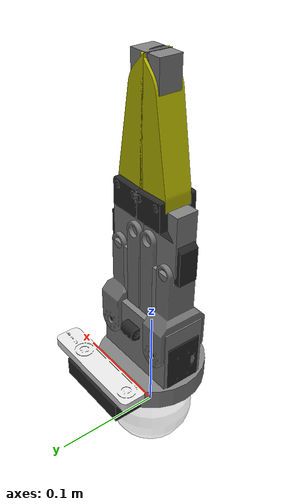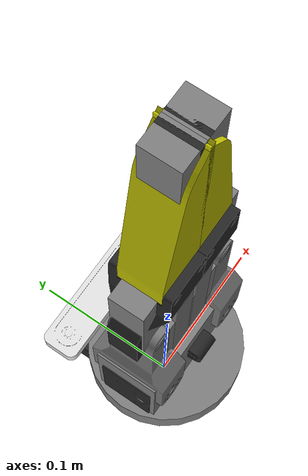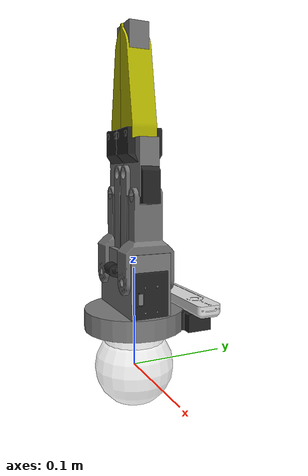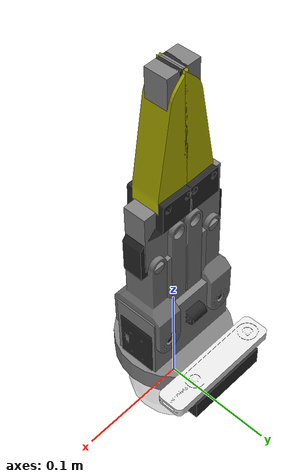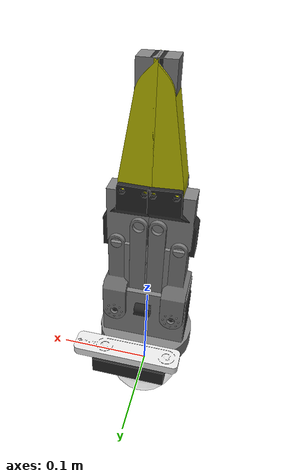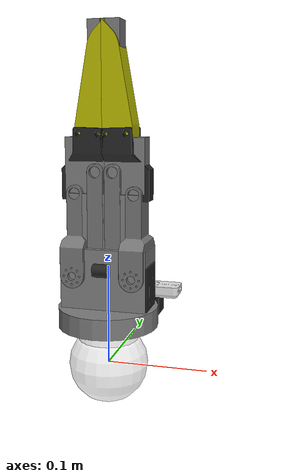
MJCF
<mujoco model="legato_gripper">

  <actuator>
      <motor ctrllimited="true" ctrlrange="-20 20" joint="joint_left_driver" gear="1" name="torque_left_drive"/>
      <motor ctrllimited="true" ctrlrange="-20 20" joint="joint_right_driver" gear="1" name="torque_right_drive"/>
  </actuator>

  <asset>
    <material name="metal" rgba="0.58 0.58 0.58 1"/>
    <material name="black" rgba="0.149 0.149 0.149 1"/>
    <material name="gray" rgba="0.4627 0.4627 0.4627 1"/>
    <material name="white" rgba="0.9 0.9 0.9 1"/>
    <material name="yellow" rgba="0.75 0.75 0 1"/>
    <material name="blue" rgba="0 0 1 1"/>
    <material name="tool_mount" rgba="0.9 0.9 0.9 0.5"/>
    <material name="silicone" rgba="0.1882 0.1882 0.1882 1"/>

    <mesh name="mesh_base" file="meshes/base.stl" scale="0.001 0.001 0.001"/>
    <mesh name="mesh_camera" file="meshes/t265.stl" scale="0.001 0.001 0.001"/>
    <mesh name="mesh_link_upper" file="meshes/link_upper.stl" scale="0.001 0.001 0.001"/>
    <mesh name="mesh_link_lower" file="meshes/link_lower.stl" scale="0.001 0.001 0.001"/>
    <mesh name="mesh_link_finger" file="meshes/link_finger.stl" scale="0.001 0.001 0.001"/>
    <mesh name="mesh_finger_tip" file="meshes/finger_tip.stl" scale="0.001 0.001 0.001"/>
  </asset>

  <worldbody>
    <body name="base" pos="0 0 0.04">
      <geom name="geom_mount_1_viz"
        type="cylinder" size="0.03 0.02"
        pos="0 0 -0.02" quat="0.7071068 0 0 0.7071068"
        group="1" contype="0" conaffinity="0"
        material="tool_mount"
        />
      <geom name="geom_mount_2_viz"
        type="sphere" size="0.04"
        pos="0 0 -0.04"
        group="1" contype="0" conaffinity="0"
        material="tool_mount"
        />
      <geom name="geom_base_viz"
        type="mesh" mesh="mesh_base"
        quat="0.7071068 0 0 0.7071068"
        group="1" contype="0" conaffinity="0"
        material="black"
        />
      <geom name="geom_camera_viz"
        type="mesh" mesh="mesh_camera"
        pos="0.0091 0.0525 0.018" quat="0 0.707 0 0.707"
        group="1" contype="0" conaffinity="0"
        material="white"
        />
      <geom name="geom_base_1_col"
        type="cylinder" pos="0 0 0.01" size="0.05 0.01"
        />
      <geom name="geom_base_2_col"
        type="box" pos="0 0 0.045" size="0.043 0.02 0.035"
        />
        <!-- type="box" pos="0 0 0.038" size="0.043 0.02 0.028" -->
      <inertial
        mass="163.98e-03" fullinertia="147.87942e-06 178.14255e-06 224.8969e-06 -12.24474e-06 -3.40457e-06 42.8782e-06"
        pos="0.00187 0.0124 0.033"
        />
      <body name="camera_point" pos="0 0.0525 0.02" quat="1 0 0 0">
          <camera mode="fixed" name="stereo_l_right_hand" pos="0.032 0.0 0.0" quat="0 1 0 0" fovy="120"/>
          <camera mode="fixed" name="stereo_r_right_hand" pos="-0.032 0.0 0.0" quat="0 1 0 0" fovy="120"/>
      </body>

    <body name="left_link_lower" pos="0.02975  0 0.05325">
      <joint name="joint_left_driver"
        axis="0 1 0"
        limited="true" range="0 1.5708"
        frictionloss="0.4" damping="0.2"
        />
      <geom name="geom_left_link_lower_viz"
        type="mesh" mesh="mesh_link_lower"
        quat="0.5 0.5 0.5 0.5"
        group="1" contype="0" conaffinity="0"
        material="gray"
        />
      <geom name="geom_left_link_lower_col"
        type="box" pos="-0.015 0 0.045" size="0.022 0.014 0.035"
        />
      <inertial
        mass="9.37e-03" diaginertia="5.82620e-9 4.47730e-9 2.00989e-9"
        pos="0 0 0.03796"
        />

    <body name="left_link_finger" pos="0 0 0.08">
      <joint name="joint_left_finger"
        limited="true" range="-1.5708 0"
        axis="0 1 0"
        />
      <geom name="geom_left_link_finger_viz"
        type="mesh" mesh="mesh_link_finger"
        quat="0.707 0 0 -0.707"
        group="1" contype="0" conaffinity="0"
        material="black"
        />
      <geom name="geom_left_finger_tip_viz"
        type="mesh" mesh="mesh_finger_tip"
        pos="-0.03131 0 0.0534" quat="0.707 0.707 0 0"
        group="1" contype="0" conaffinity="0"
        material="yellow"
        />
      <geom name="geom_left_finger_pad_viz"
        type="box" pos="-0.033 0 0.11" size="0.0015 0.01 0.0525"
        group="1" contype="0" conaffinity="0"
        material="black"
        />
      <geom name="geom_left_finger_tip_col"
        type="box" pos="-0.022  0 0.11" size="0.008 0.01 0.0525"
        />
      <geom name="geom_left_link_finger_col"
        type="box" pos="-0.01 0 0.027" size="0.02 0.01 0.027"
        />
      <geom name="geom_left_finger_pad_col"
        type="box" pos="-0.033 0 0.11" size="0.0015 0.01 0.0525"
        friction="0.7"
        solimp="0.95 0.99 0.001" solref="0.004 1" priority="1"
        group="0"
        />

      <inertial
        mass="25.2e-03" fullinertia="4.64387e-06 44.32392e-06  42.72353e-06 0 7.13596e-06 0"
        pos="0.01598 0 0.6940"
        />

    <body name="left_coupler" pos="-0.021 0 0.021" >
      <joint name="joint_left_coupler"
        axis="0 1 0"
        />
      <inertial
        mass="5.0e-02" diaginertia="1.0e-09 1.0e-09 1.0e-09"
        pos="0 0 0"
        />
    </body>
    </body>
    </body>

    <body name="left_link_upper" pos="0.00875 0 0.07425">
      <joint name="joint_left_passive"
        limited="true" range="0 1.5708"
        axis="0 1 0"
        />
      <geom name="geom_left_link_upper_viz"
        type="mesh" mesh="mesh_link_upper"
        quat="0.5 0.5 0.5 0.5"
        group="1" contype="0" conaffinity="0"
        material="gray"
        />
      <inertial
        mass="7.88e-03" diaginertia="3.61108e-09 4.01711e-09 0.74967e-09"
        pos="0 0 0.0404"
        />
    </body>

    <body name="right_link_lower" pos="-0.02975 0 0.05325">
      <joint name="joint_right_driver"
        axis="0 1 0"
        limited="true" range="-1.5708 0"
        frictionloss="0.4" damping="0.2"
        />
      <geom name="geom_right_link_lower_viz"
        type="mesh" mesh="mesh_link_lower"
        quat="-0.5 -0.5 0.5 0.5"
        group="1" contype="0" conaffinity="0"
        material="gray"
        />
      <geom name="geom_right_link_lower_col"
        type="box" pos="0.015 0 0.045" size="0.022 0.014 0.035"
        />
      <inertial
        mass="9.37e-03" diaginertia="5.82620e-09 4.47730e-09 2.00989e-09"
        pos="0 0 0.03796"
        />

    <body name="right_link_finger" pos="0 0 0.08">
      <joint name="joint_right_finger"
        axis="0 1 0"
        limited="true" range="0 1.5708"
        />
      <geom name="geom_right_link_finger_viz"
        type="mesh" mesh="mesh_link_finger"
        quat="0.707 0 0 0.707"
        group="1" contype="0" conaffinity="0"
        material="black"
        />
      <geom name="geom_right_finger_tip_viz"
        type="mesh" mesh="mesh_finger_tip"
        pos="0.03131 0 0.0534"
        quat="0 0 0.707 0.707"
        group="1" contype="0" conaffinity="0"
        material="yellow"
        />
      <geom name="geom_right_finger_pad_viz"
        type="box" pos="0.033 0 0.11" size="0.0015 0.01 0.0525"
        group="1" contype="0" conaffinity="0"
        material="black"
        />
      <geom name="geom_right_finger_tip_col"
        type="box" pos="0.022 0 0.11" size="0.008 0.01 0.0525"
        />
      <geom name="geom_right_link_finger_col"
        type="box" pos="0.01 0 0.027" size="0.02 0.01 0.027"
        />
      <geom name="geom_right_finger_pad_col"
        type="box" pos="0.033 0 0.11" size="0.0015 0.01 0.0525"
        friction="0.7"
        solimp="0.95 0.99 0.001" solref="0.004 1" priority="1"
        group="0"
        />

      <inertial
        mass="25.2e-03" fullinertia="4.64387e-06 44.32392e-06  42.72353e-06 0 -7.13596e-06 0"
        pos="-0.01598 0 0.6940"
        />

    <body name="right_coupler" pos="0.021 0 0.021" >
      <joint name="joint_right_coupler"
        axis="0 1 0"
        />
      <inertial
        mass="5.0e-02" diaginertia="1.0e-09 1.0e-09 1.0e-09"
        pos="0 0 0"
        />
    </body>
    </body>
    </body>

    <body name="right_link_upper" pos="-0.00875 0 0.07425">
      <joint name="joint_right_passive"
        axis="0 1 0"
        limited="true" range="-1.5708 0"
        />
      <geom name="geom_right_upper_viz"
        type="mesh" mesh="mesh_link_upper"
        quat="-0.5 -0.5 0.5 0.5"
        group="1" contype="0" conaffinity="0"
        material="gray"
        />
      <inertial
        mass="7.88e-03" diaginertia="5.82620e-09 4.47730e-09 2.00989e-09"
        pos="0 0 0.03796"
        />
    </body>

    <body name="eef" pos="0 0 0.13" quat="1 0 0 0">
    </body>

  </body>

  </worldbody>

  <equality>
    <connect body1="right_link_upper" body2="right_coupler"
      anchor="0 0 0.08"
      solimp="0.95 0.99 0.001" solref="0.005 1"
      active="true"
      />
    <connect body1="left_link_upper" body2="left_coupler"
      anchor="0 0 0.08"
      solimp="0.95 0.99 0.001" solref="0.005 1"
      active="true"
      />
    <joint joint1="joint_right_driver" joint2="joint_right_finger" polycoef="0 -1 0 0 0"
        solimp="0.95 0.99 0.001" solref="0.005 1"/>
    <joint joint1="joint_left_driver" joint2="joint_left_finger" polycoef="0 -1 0 0 0"
        solimp="0.95 0.99 0.001" solref="0.005 1"/>
  </equality>

</mujoco>
